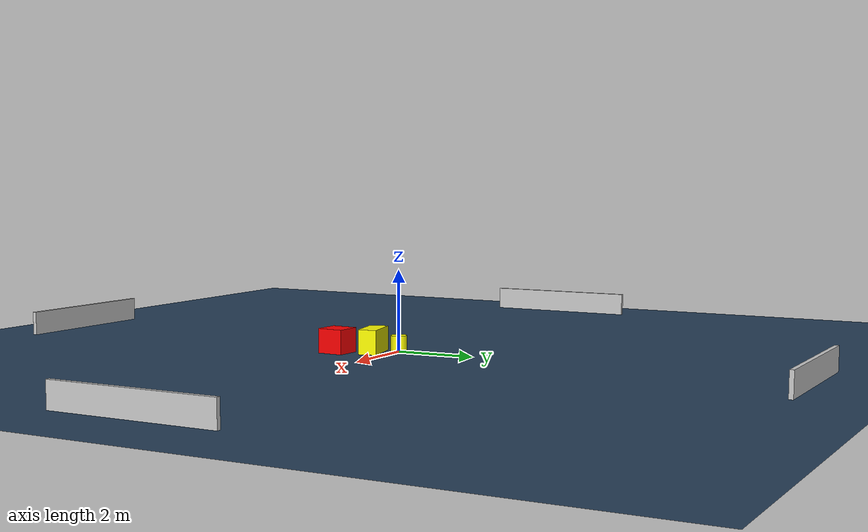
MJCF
<?xml version="1.0" ?>
<mujoco model="generated_environment">
  <option timestep="0.01" integrator="RK4" cone="elliptic"/>
  <default>
    <geom density="1"/>
  </default>
  <asset>
    <texture builtin="gradient" height="3072" name="skybox" rgb1="0.3 0.5 0.7" rgb2="0 0 0" type="skybox" width="512"/>
    <texture builtin="checker" height="300" name="groundplane" rgb1="0.2 0.3 0.4" rgb2="0.1 0.2 0.3" type="2d" width="300"/>
    <material name="groundplane" reflectance="0.2" texrepeat="5 5" texture="groundplane"/>
  </asset>
  <worldbody>
    <light dir="0 0 -1" directional="true" pos="0 0 1.5"/>
    <geom condim="3" friction="0.5 0.005 0.001" material="groundplane" name="floor" pos="0 0 0" size="0 0 0.05" type="plane"/>
    <body name="walls">
      <geom name="wall_1" condim="4" pos="-10.0 0.0 0.3" rgba="0.800000011920929 0.800000011920929 0.800000011920929 1.0" size="0.05 2.0 0.3" type="box"/>
      <geom name="wall_2" condim="4" pos="10.0 0.0 0.3" rgba="0.800000011920929 0.800000011920929 0.800000011920929 1.0" size="0.05 2.0 0.3" type="box"/>
      <geom name="wall_3" condim="4" pos="0.0 -10.0 0.3" rgba="0.800000011920929 0.800000011920929 0.800000011920929 1.0" size="2.0 0.05 0.3" type="box"/>
      <geom name="wall_4" condim="4" pos="0.0 10.0 0.3" rgba="0.800000011920929 0.800000011920929 0.800000011920929 1.0" size="2.0 0.05 0.3" type="box"/>
    </body>
    <body name="robot">
      <joint name="joint_x" type="slide" pos="0 0 0" axis="1 0 0"/>
      <joint name="joint_y" type="slide" pos="0 0 0" axis="0 1 0"/>
      <geom name="robot" type="cylinder" pos="0.0 0.0 0.2" size="0.2 0.2 0.0" mass="5.0" friction="1.0 0.005 0.0001" condim="4" rgba="1.0 1.0 0.0 1.0"/>
    </body>
    <body name="obstacle_1_movable">
      <geom name="obstacle_1_movable" condim="4" pos="0.40507149259680936 -0.48820802963636983 0.3" euler="0 0 282.03410826112463" friction="0.0 0.005 0.001" rgba="1.0 1.0 0.0 1.0" size="0.2240610851657886 0.4744214215316574 0.3" type="box" mass="0.1"/>
      <joint type="free"/>
    </body>
    <body name="obstacle_2_static">
      <geom name="obstacle_2_static" condim="4" pos="0.8517743740223506 -1.237914836232694 0.3" euler="0 0 356.77580313843623" friction="0.0 0.005 0.001" rgba="1.0 0.0 0.0 1.0" size="0.32209674770329183 0.3282887320737059 0.3" type="box"/>
    </body>
  </worldbody>
  <actuator>
    <motor name="actuator_x" joint="joint_x" gear="1" ctrlrange="-1 1"/>
    <motor name="actuator_y" joint="joint_y" gear="1" ctrlrange="-1 1"/>
  </actuator>
</mujoco>
